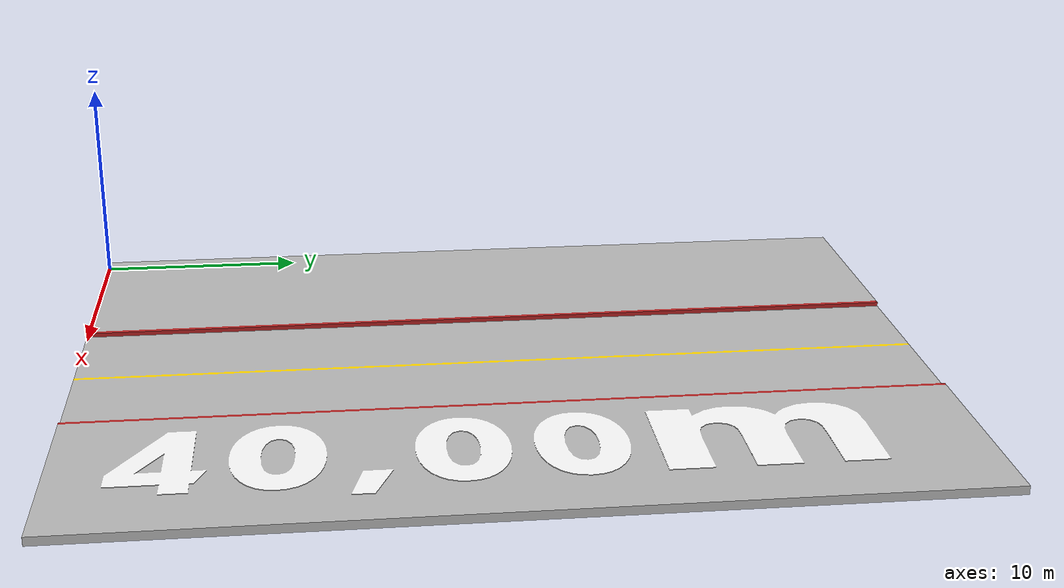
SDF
<?xml version="1.0" ?>
<sdf version="1.5">
   <model name="recta40,00m">
      <static>true</static>
      <link name="recta40,00m_link">
         <collision name="recta40,00m_collision">
            <pose>15 20 0.10  0 0 0</pose>
            <geometry>
               <box>
                  <size>30 40 0.20</size>
               </box>
            </geometry>
         </collision>
         <visual name="recta40,00m_mesh">
            <cast_shadows>false</cast_shadows>
            <geometry>
               <mesh>
                  <uri>model://recta40,00m/meshes/recta40,00m.dae</uri>
               </mesh>
            </geometry>
         </visual>
      </link>
   </model>
</sdf>
